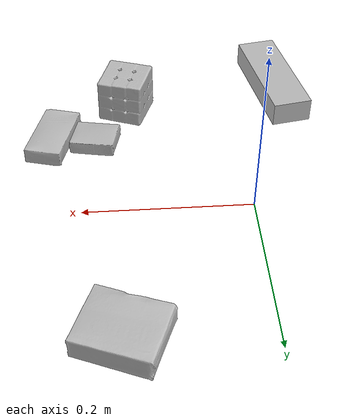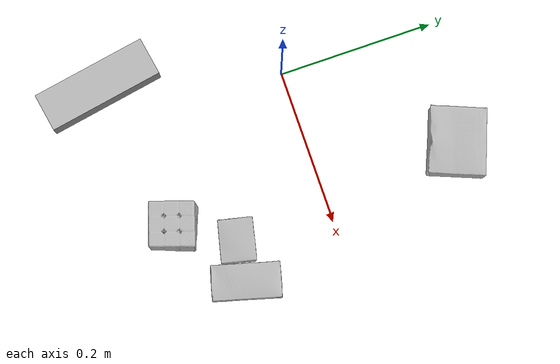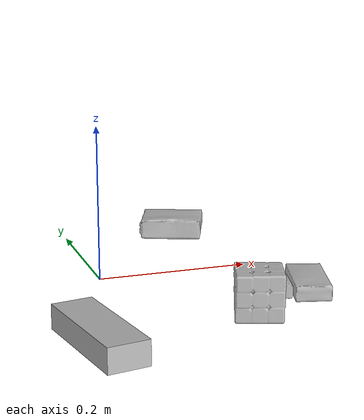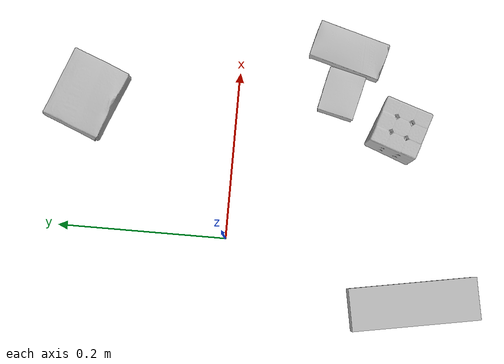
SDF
<sdf version="1.4">
  <world name="default">
    <light name="light1" type="point">
      <pose>0 0 1 0 0 0</pose>
      <diffuse>3 3 3 1</diffuse>
      <specular>3 3 3 1</specular>
    </light>
    <light name="light2" type="point">
      <pose>0 0.5 2 0 0 0</pose>
      <diffuse>1 1 1 1</diffuse>
      <specular>1 1 1 1</specular>
    </light>
    <light name="light3" type="point">
      <pose>0 0.5 2 0 0 0</pose>
      <diffuse>3 3 3 1</diffuse>
      <specular>3 3 3 1</specular>
    </light>
    <scene>
      <ambient>0.7 0.7 0.7</ambient>
    </scene>
    <model name="box1">
      <link name="link_box1">
        <collision name="default">
          <geometry>
            <mesh>
              <uri>model://jenga/collision_meshes/collision.obj</uri>
              <scale>1.0 1.0 1.0</scale>
            </mesh>
          </geometry>
          <surface>
            <friction>
              <ode>
                <mu>0.5</mu>
                <mu2>0.5</mu2>
              </ode>
            </friction>
          <contact>
        <ode>
            <max_vel>0</max_vel>
            <min_depth>0.0001</min_depth>
            <kp>1e8</kp>
        </ode>
    </contact></surface>
        </collision>
        <visual name="default">
          <geometry>
            <mesh>
              <uri>model://jenga/visual_meshes/visual.dae</uri>
              <scale>1.0 1.0 1.0</scale>
            </mesh>
          </geometry>
        </visual>
        <inertial>
          <mass>0.28879067301750183</mass>
          <pose>-2.502855807051674e-07 -0.00010250010382151231 -4.0923401684267446e-05 0.0 -7.342154049184251e-07 0.0</pose>
          <inertia>
            <ixx>7.991539e-05</ixx>
            <iyy>0.00054150453</iyy>
            <izz>0.00057810213</izz>
            <ixy>0</ixy>
            <ixz>0</ixz>
            <iyz>0</iyz>
          </inertia>
        </inertial>
      </link>
      <pose>-0.057254645973443985 -0.2253604680299759 0.01499999687075615 1.4936164223514162e-08 1.7755330938299323e-09 1.7492744523160113</pose>
    </model>
    <model name="box2">
      <link name="link_box2">
        <collision name="default">
          <geometry>
            <mesh>
              <uri>model://sugar_box/collision_meshes/collision.obj</uri>
              <scale>0.5 0.5 0.5</scale>
            </mesh>
          </geometry>
          <surface>
            <friction>
              <ode>
                <mu>0.5</mu>
                <mu2>0.5</mu2>
              </ode>
            </friction>
          <contact>
        <ode>
            <max_vel>0</max_vel>
            <min_depth>0.0001</min_depth>
            <kp>1e8</kp>
        </ode>
    </contact></surface>
        </collision>
        <visual name="default">
          <geometry>
            <mesh>
              <uri>model://sugar_box/visual_meshes/visual.dae</uri>
              <scale>0.5 0.5 0.5</scale>
            </mesh>
          </geometry>
        </visual>
        <inertial>
          <mass>0.10389333218336105</mass>
          <pose>0.000517186417710036 1.9245549992774613e-05 -0.00018182402709499002 -0.00040462615469338603 0.0010506637547558321 0.0026153785561208315</pose>
          <inertia>
            <ixx>2.1640906e-05</ixx>
            <iyy>6.994788e-05</iyy>
            <izz>8.373595e-05</izz>
            <ixy>0</ixy>
            <ixz>0</ixz>
            <iyz>0</iyz>
          </inertia>
        </inertial>
      </link>
      <pose>0.23627984523773193 -0.1276775747537613 0.011399304494261742 0.0007755508850927868 -0.023432528074328024 1.2981547569254863</pose>
    </model>
    <model name="box3">
      <link name="link_box3">
        <collision name="default">
          <geometry>
            <mesh>
              <uri>model://rubiks_cube/collision_meshes/collision.obj</uri>
              <scale>1.0 1.0 1.0</scale>
            </mesh>
          </geometry>
          <surface>
            <friction>
              <ode>
                <mu>0.5</mu>
                <mu2>0.5</mu2>
              </ode>
            </friction>
          <contact>
        <ode>
            <max_vel>0</max_vel>
            <min_depth>0.0001</min_depth>
            <kp>1e8</kp>
        </ode>
    </contact></surface>
        </collision>
        <visual name="default">
          <geometry>
            <mesh>
              <uri>model://rubiks_cube/visual_meshes/visual.dae</uri>
              <scale>1.0 1.0 1.0</scale>
            </mesh>
          </geometry>
        </visual>
        <inertial>
          <mass>0.21973572671413422</mass>
          <pose>2.6721041649580002e-05 5.256966323941015e-05 -7.264316082000732e-06 -0.054673783840129137 -0.09814154164948871 -0.03445565380518822</pose>
          <inertia>
            <ixx>0.00012141874</ixx>
            <iyy>0.000120852514</iyy>
            <izz>0.00012242487</izz>
            <ixy>0</ixy>
            <ixz>0</ixz>
            <iyz>0</iyz>
          </inertia>
        </inertial>
      </link>
      <pose>0.14319200813770294 -0.19165609776973724 0.028678974136710167 -3.3306730423386353e-06 -9.245926503461767e-07 -0.32607224354805214</pose>
    </model>
    <model name="box4">
      <link name="link_box4">
        <collision name="default">
          <geometry>
            <mesh>
              <uri>model://pudding_box/collision_meshes/collision.obj</uri>
              <scale>0.5 0.5 0.5</scale>
            </mesh>
          </geometry>
          <surface>
            <friction>
              <ode>
                <mu>0.5</mu>
                <mu2>0.5</mu2>
              </ode>
            </friction>
          <contact>
        <ode>
            <max_vel>0</max_vel>
            <min_depth>0.0001</min_depth>
            <kp>1e8</kp>
        </ode>
    </contact></surface>
        </collision>
        <visual name="default">
          <geometry>
            <mesh>
              <uri>model://pudding_box/visual_meshes/visual.dae</uri>
              <scale>0.5 0.5 0.5</scale>
            </mesh>
          </geometry>
        </visual>
        <inertial>
          <mass>0.0391676165163517</mass>
          <pose>0.00024474109522998333 0.00040339428232982755 -0.0002594413817860186 0.005213101313254789 -0.0066037982630024914 0.020079830751203582</pose>
          <inertia>
            <ixx>1.1069244e-05</ixx>
            <iyy>7.447467e-06</iyy>
            <izz>1.634663e-05</izz>
            <ixy>0</ixy>
            <ixz>0</ixz>
            <iyz>0</iyz>
          </inertia>
        </inertial>
      </link>
      <pose>0.18404889106750488 -0.12208402901887894 0.00986290443688631 0.022346130814070143 -0.011393419202362982 1.3400851269116736</pose>
    </model>
    <model name="box5">
      <link name="link_box5">
        <collision name="default">
          <geometry>
            <mesh>
              <uri>model://gelatin_box/collision_meshes/collision.obj</uri>
              <scale>1.0 1.0 1.0</scale>
            </mesh>
          </geometry>
          <surface>
            <friction>
              <ode>
                <mu>0.5</mu>
                <mu2>0.5</mu2>
              </ode>
            </friction>
          <contact>
        <ode>
            <max_vel>0</max_vel>
            <min_depth>0.0001</min_depth>
            <kp>1e8</kp>
        </ode>
    </contact></surface>
        </collision>
        <visual name="default">
          <geometry>
            <mesh>
              <uri>model://gelatin_box/visual_meshes/visual.dae</uri>
              <scale>1.0 1.0 1.0</scale>
            </mesh>
          </geometry>
        </visual>
        <inertial>
          <mass>0.24157556891441345</mass>
          <pose>0.0004319618456065655 0.00011156872642459348 -0.0003640321083366871 -0.0010503718658393805 -0.0047558177571565665 0.016440565059328244</pose>
          <inertia>
            <ixx>0.00017053263</ixx>
            <iyy>0.00012181056</iyy>
            <izz>0.00025958868</izz>
            <ixy>0</ixy>
            <ixz>0</ixz>
            <iyz>0</iyz>
          </inertia>
        </inertial>
      </link>
      <pose>0.1559162139892578 0.17964740097522736 0.015168312005698681 0.005597104965918578 -0.007304195853927415 -1.9556876241071433</pose>
    </model>
  <physics type="ode">
      <max_contacts>50</max_contacts>
      <ode>
        <solver>
          <type>quick</type>
          <iters>75</iters>
        </solver>
        <constraints>
          <contact_max_correcting_vel>0</contact_max_correcting_vel>
          <contact_surface_layer>0</contact_surface_layer>
        </constraints>
      </ode>
    </physics></world>
</sdf>
